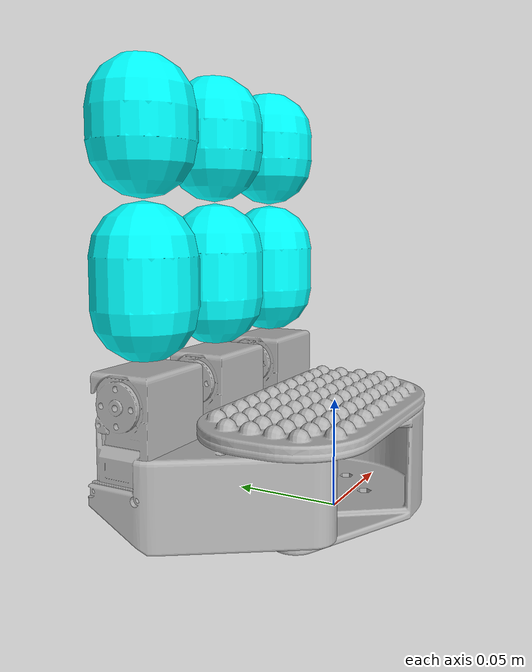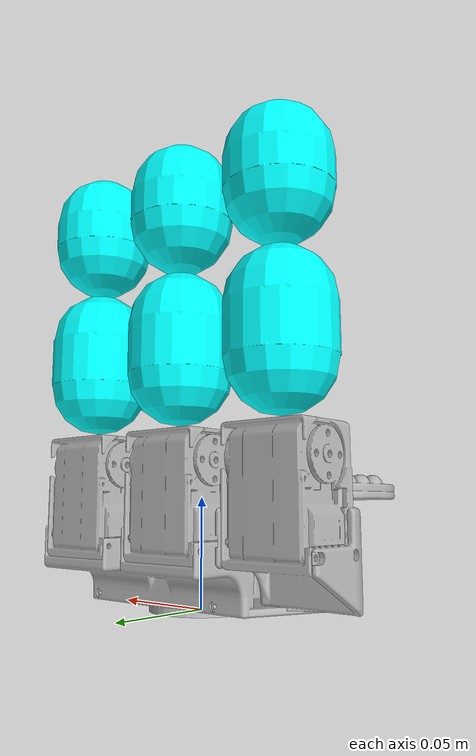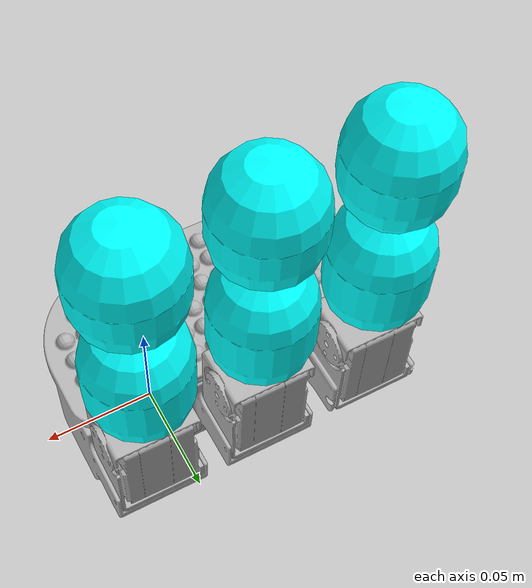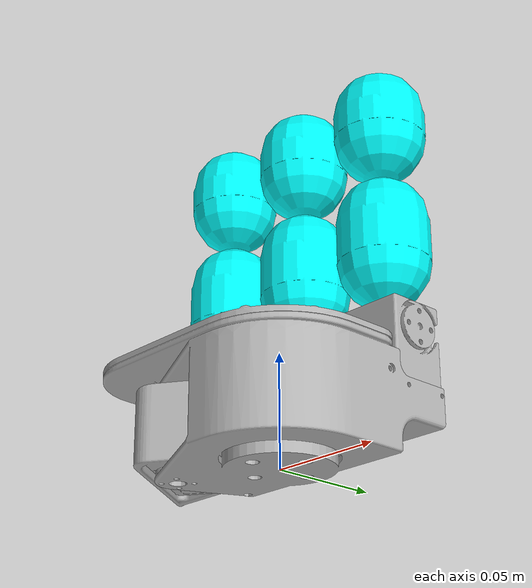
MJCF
<mujoco model="hand_asembly_ver2_URDF_5">
  <compiler angle="radian" meshdir="./mjcf/assets/hand_camera"/>
  <option iterations="20"/>

  <default>
    <joint damping=".5"/>
    <position kp="1"/>
    <geom density="800" rgba="0.7 0.7 0.7 1" contype="0" conaffinity="0" group="0"/>

    <default class="colision_A">
      <geom type="box" rgba="0.1 0.5 0.1 0.0" contype="2" conaffinity="3" group="1"/>
    </default>
    <default class="colision_B">
      <geom type="box" rgba="0.1 0.5 0.1 0.5" contype="4" conaffinity="1" group="2"/>
    </default>

  </default>

  <asset>
    <texture type="skybox" builtin="gradient" rgb1="1 1 1" rgb2="0.5 0.5 0.5" width="265" height="256"/>

    <mesh name="base_link" file="base_link.stl"/>
    <mesh name="proximal_thumb" file="proximal_thumb.stl"/>
    <mesh name="mideal_thumb" file="mideal_thumb.stl"/>
    <mesh name="distal_thumb" file="distal_thumb.stl"/>
    <mesh name="proximal_finger_first" file="proximal_finger_first.stl"/>
    <mesh name="mideal_finger_first" file="mideal_finger_first.stl"/>
    <mesh name="distal_finger_first" file="distal_finger_first.stl"/>
    <mesh name="proximal_finger_second" file="proximal_finger_second.stl"/>
    <mesh name="mideal_finger_second" file="mideal_finger_second.stl"/>
    <mesh name="distal_finger_second" file="distal_finger_second.stl"/>
  </asset>

  <worldbody>
    <light directional="true" diffuse="0.4 0.4 0.4" specular="0.1 0.1 0.1" pos="0 0 5.0" dir="0 0 -1" castshadow="false" />
    <light directional="true" diffuse="0.6 0.6 0.6" specular="0.2 0.2 0.2" pos="0 0 4" dir="0 0 -1" />

    <!-- PALM -->
    <body name="palm" pos="0 0 0">
      <geom type="mesh" mesh="base_link"/>
      <geom type="mesh" pos="-0.0302 0.04346 0.025" quat="1 0 0 0" mesh="proximal_finger_first"/>
      <geom type="mesh" pos="0.0196 0.04346 0.025" quat="1 0 0 0" mesh="proximal_finger_second"/>

      <!-- THUMB -->
      <body name="proximal_thumb" pos="-0.05532 -0.00754 0.0075">
        <joint name="joint_proximal_thumb" pos="0 0 0" axis="0 0 -1" range="-3.14 0"/>
        <geom type="mesh" mesh="proximal_thumb"/>

        <body name="mideal_thumb" pos="-0.024495 0.05232 0.05561">
          <joint name="joint_mideal_thumb" pos="0 0 0" axis="1 0 0" range="-1.0 1.0"/>

          <!-- CAPSULE -->
          <geom name = "mideal_thumb" type="capsule" size="0.021 0.01" pos="0 0 0.045" rgba="0 1 1 1"/>

          <body name="distal_thumb" pos="0 0 0.05861">
            <joint name="joint_distal_thumb" pos="0 0 0" axis="1 0 0" range="-1.57 1.57"/>

            <!-- CAPSULE -->
            <geom name = "distal_thumb" type="capsule" size="0.021 0.006" pos="0 0 0.045" rgba="0 1 1 1"/>

          </body>

        </body>
      </body>

      <!-- FINGER FIRST -->
      <body name="mideal_finger_first" pos="-0.029825 0.04486 0.06311">
        <joint name="joint_mideal_finger_first" pos="0 0 0" axis="1 0 0" range="-1.0 1.0"/>

        <!-- CAPSULE -->
        <geom name = "mideal_f_finger" type="capsule" size="0.021 0.01" pos="0 0 0.045" rgba="0 1 1 1"/>

        <body name="distal_finger_first" pos="0 0 0.05861">
          <joint name="joint_distal_finger_first" pos="0 0 0" axis="1 0 0" range="-1.57 1.57"/>

          <!-- CAPSULE -->
          <geom name = "distal_f_finger" type="capsule" size="0.021 0.006" pos="0 0 0.045" rgba="0 1 1 1"/>

        </body>

      </body>

      <!-- FINGER SECOND -->
      <body name="mideal_finger_second" pos="0.019975 0.04486 0.06311">
        <joint name="joint_mideal_finger_second" pos="0 0 0" axis="1 0 0" range="-1.0 1.0"/>

        <!-- CAPSULE -->
        <geom name = "mideal_s_finger" type="capsule" size="0.021 0.01" pos="0 0 0.045" rgba="0 1 1 1"/>

        <body name="distal_finger_second" pos="0 0 0.05861">
          <joint name="joint_distal_finger_second" pos="0 0 0" axis="1 0 0" range="-1.57 1.57"/>

          <!-- CAPSULE -->
          <geom name = "distal_s_finger" type="capsule" size="0.021 0.006" pos="0 0 0.045" rgba="0 1 1 1"/>

        </body>

      </body>
    </body>
  </worldbody>

  <actuator>
    <position name="thumb_0" joint="joint_proximal_thumb" ctrlrange="-3.14 0"/>
    <position name="thumb_1" joint="joint_mideal_thumb" ctrlrange="-1.0 1.0"/>
    <position name="thumb_2" joint="joint_distal_thumb" ctrlrange="-1.57 1.57"/>
    <position name="f_finger_0" joint="joint_mideal_finger_first" ctrlrange="-1.0 1.0"/>
    <position name="f_finger_1" joint="joint_distal_finger_first" ctrlrange="-1.57 1.57"/>
    <position name="s_finger_0" joint="joint_mideal_finger_second" ctrlrange="-1.0 1.0"/>
    <position name="s_finger_1" joint="joint_distal_finger_second" ctrlrange="-1.57 1.57"/>
  </actuator>

</mujoco>
